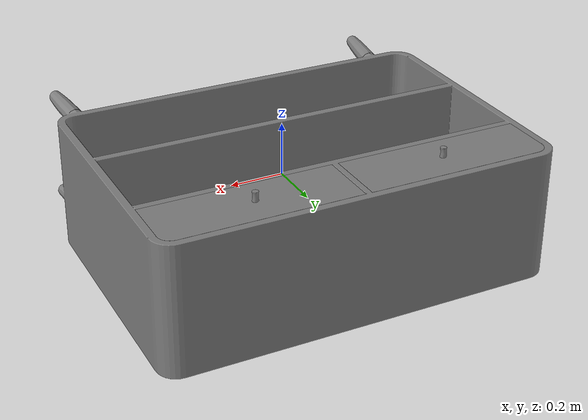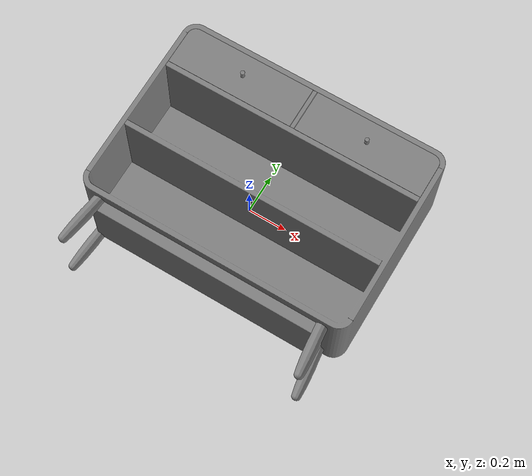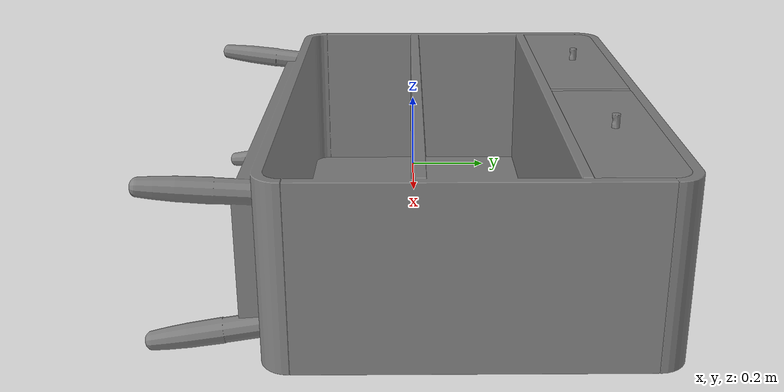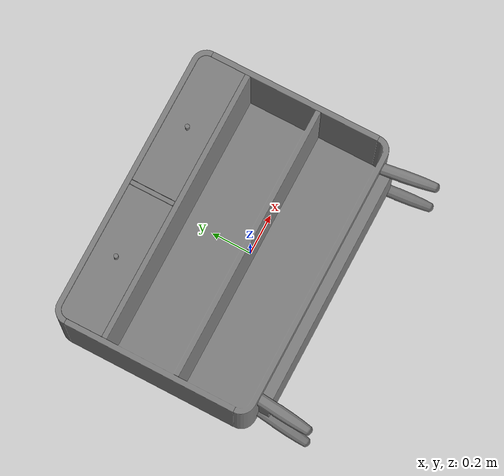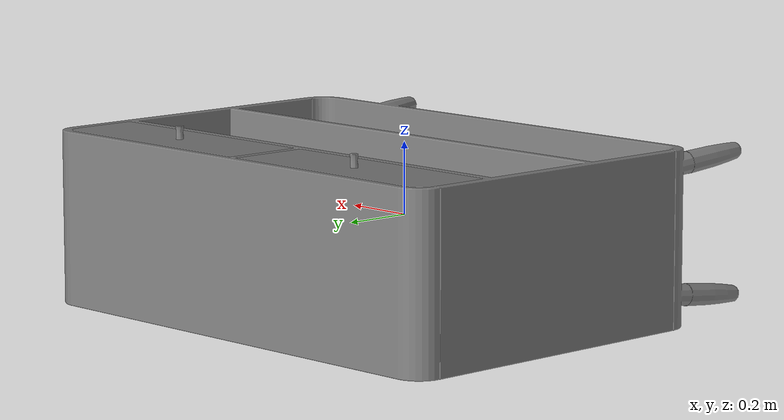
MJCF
<?xml version='1.0' encoding='UTF-8'?>
<mujoco model="articulated_object">
  <compiler angle="radian"/>
  <asset>
    <mesh name="2c681d7e64e0410d76156f500cd2df798975a25d_part_1" content_type="model/obj" file="/home/blackbird/GYH/articulated_assets/acd_test/hssd-data/bookcase/2c681d7e64e0410d76156f500cd2df798975a25d/objs/2c681d7e64e0410d76156f500cd2df798975a25d_part_1.obj"/>
    <mesh name="2c681d7e64e0410d76156f500cd2df798975a25d_part_2" content_type="model/obj" file="/home/blackbird/GYH/articulated_assets/acd_test/hssd-data/bookcase/2c681d7e64e0410d76156f500cd2df798975a25d/objs/2c681d7e64e0410d76156f500cd2df798975a25d_part_2.obj"/>
    <mesh name="2c681d7e64e0410d76156f500cd2df798975a25d_part_3" content_type="model/obj" file="/home/blackbird/GYH/articulated_assets/acd_test/hssd-data/bookcase/2c681d7e64e0410d76156f500cd2df798975a25d/objs/2c681d7e64e0410d76156f500cd2df798975a25d_part_3.obj"/>
    <mesh name="2c681d7e64e0410d76156f500cd2df798975a25d_part_4" content_type="model/obj" file="/home/blackbird/GYH/articulated_assets/acd_test/hssd-data/bookcase/2c681d7e64e0410d76156f500cd2df798975a25d/objs/2c681d7e64e0410d76156f500cd2df798975a25d_part_4.obj"/>
    <mesh name="2c681d7e64e0410d76156f500cd2df798975a25d_part_5" content_type="model/obj" file="/home/blackbird/GYH/articulated_assets/acd_test/hssd-data/bookcase/2c681d7e64e0410d76156f500cd2df798975a25d/objs/2c681d7e64e0410d76156f500cd2df798975a25d_part_5.obj"/>
  </asset>
  <worldbody>
    <body name="base_link">
      <inertial pos="0 0 0" mass="10" diaginertia="0.1 0.1 0.1"/>
      <geom type="mesh" mesh="2c681d7e64e0410d76156f500cd2df798975a25d_part_5"/>
      <body name="drawer" pos="0.352616 0.503853 0.208335">
        <inertial pos="-0.352616 -0.503853 -0.208335" mass="3" diaginertia="0.03 0.03 0.03"/>
        <joint name="joint_drawer" pos="0 0 0" axis="-1e-06 0 1" type="slide" range="0 0.239646" actuatorfrcrange="-10 10"/>
        <geom pos="-0.352616 -0.503853 -0.208335" quat="1 0 0 0" type="mesh" mesh="2c681d7e64e0410d76156f500cd2df798975a25d_part_1"/>
        <body name="knob">
          <inertial pos="-0.352616 -0.503853 -0.208335" mass="0.1" diaginertia="0.001 0.001 0.001"/>
          <geom pos="-0.352616 -0.503853 -0.208335" quat="1 0 0 0" type="mesh" mesh="2c681d7e64e0410d76156f500cd2df798975a25d_part_3"/>
        </body>
      </body>
      <body name="drawer_1" pos="-0.353037 0.503853 0.208334">
        <inertial pos="0.353037 -0.503853 -0.208334" mass="3" diaginertia="0.03 0.03 0.03"/>
        <joint name="joint_drawer_1" pos="0 0 0" axis="-1e-06 0 1" type="slide" range="0 0.239645" actuatorfrcrange="-10 10"/>
        <geom pos="0.353037 -0.503853 -0.208334" quat="1 0 0 0" type="mesh" mesh="2c681d7e64e0410d76156f500cd2df798975a25d_part_2"/>
        <body name="knob_1">
          <inertial pos="0.353037 -0.503853 -0.208334" mass="0.1" diaginertia="0.001 0.001 0.001"/>
          <geom pos="0.353037 -0.503853 -0.208334" quat="1 0 0 0" type="mesh" mesh="2c681d7e64e0410d76156f500cd2df798975a25d_part_4"/>
        </body>
      </body>
    </body>
  </worldbody>
</mujoco>
